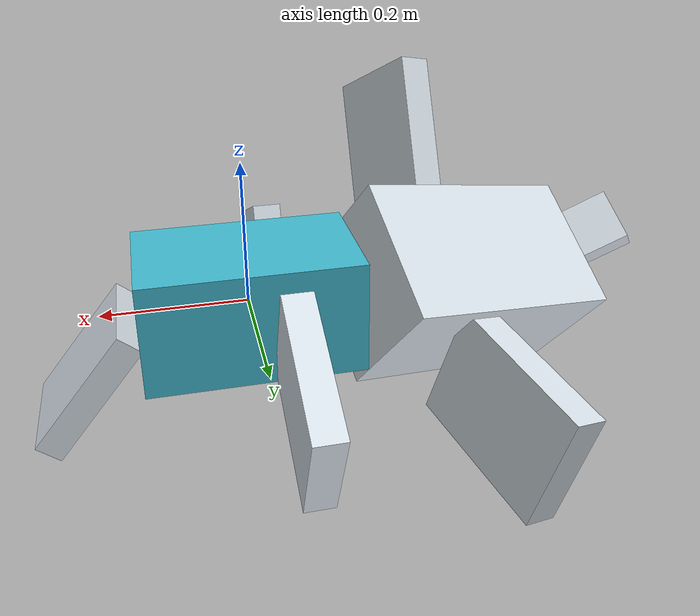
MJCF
<mujoco model="criatura">
  <compiler angle="degree" autolimits="true"/>
  <option timestep="0.002083" gravity="0 0 0" integrator="implicitfast"/>
  <default>
    <geom type="box" density="300.0" rgba="0.85 0.89 0.92 1"/>
    <joint type="hinge"/>
    <motor ctrlrange="-1 1"/>
  </default>
  <worldbody>
    <body name="p0_n0" pos="0.00000 0.00000 0.00000" quat="1.000000 0.000000 0.000000 0.000000">
      <freejoint name="raiz"/>
      <geom name="g_p0_n0" size="0.15000 0.09000 0.08000" rgba="0.25 0.72 0.8 1"/>
      <body name="p1_n1" pos="0.22404 -0.02089 -0.09233" quat="0.901553 0.000000 0.432669 0.000000">
        <joint name="p1_n1_j0" axis="1.0000 0.0000 0.0000" pos="-0.11835 0 0" range="-76.66 76.66" damping="0.3200"/>
        <joint name="p1_n1_j1" axis="0.0000 0.0000 1.0000" pos="-0.11835 0 0" range="-76.66 76.66" damping="0.3200"/>
        <geom name="g_p1_n1" size="0.09835 0.08000 0.02000"/>
      </body>
      <body name="p2_n1" pos="-0.04500 0.20167 -0.03988" quat="0.596368 0.379928 0.596368 0.379928">
        <joint name="p2_n1_j0" axis="1.0000 0.0000 0.0000" pos="-0.12321 0 0" range="-76.66 76.66" damping="0.3524"/>
        <joint name="p2_n1_j1" axis="0.0000 0.0000 1.0000" pos="-0.12321 0 0" range="-76.66 76.66" damping="0.3524"/>
        <geom name="g_p2_n1" size="0.10321 0.08396 0.02099"/>
      </body>
      <body name="p3_n1" pos="-0.05031 -0.19726 -0.03402" quat="0.596368 -0.379928 0.596368 -0.379928">
        <joint name="p3_n1_j0" axis="1.0000 0.0000 0.0000" pos="-0.11835 0 0" range="-76.66 76.66" damping="0.3200"/>
        <joint name="p3_n1_j1" axis="0.0000 0.0000 1.0000" pos="-0.11835 0 0" range="-76.66 76.66" damping="0.3200"/>
        <geom name="g_p3_n1" size="0.09835 0.08000 0.02000"/>
      </body>
      <body name="p4_n2" pos="-0.33681 -0.07641 -0.04448" quat="0.146196 -0.120462 0.937788 -0.290981">
        <geom name="g_p4_n2" size="0.18126 0.10875 0.09667"/>
        <body name="p5_n3" pos="0.23119 -0.02525 -0.07656" quat="0.901553 0.000000 0.432669 0.000000">
          <joint name="p5_n3_j0" axis="1.0000 0.0000 0.0000" pos="-0.07983 0 0" range="-76.66 76.66" damping="0.1721"/>
          <joint name="p5_n3_j1" axis="0.0000 0.0000 1.0000" pos="-0.07983 0 0" range="-76.66 76.66" damping="0.1721"/>
          <geom name="g_p5_n3" size="0.05983 0.04302 0.02000"/>
        </body>
        <body name="p6_n3" pos="-0.05438 0.23715 -0.04054" quat="0.596368 0.379928 0.596368 0.379928">
          <joint name="p6_n3_j0" axis="1.0000 0.0000 0.0000" pos="-0.14167 0 0" range="-76.66 76.66" damping="0.4438"/>
          <joint name="p6_n3_j1" axis="0.0000 0.0000 1.0000" pos="-0.14167 0 0" range="-76.66 76.66" damping="0.4438"/>
          <geom name="g_p6_n3" size="0.12167 0.08748 0.02536"/>
        </body>
        <body name="p7_n3" pos="-0.05438 -0.23195 -0.03812" quat="0.596368 -0.379928 0.596368 -0.379928">
          <joint name="p7_n3_j0" axis="1.0000 0.0000 0.0000" pos="-0.13594 0 0" range="-76.66 76.66" damping="0.4029"/>
          <joint name="p7_n3_j1" axis="0.0000 0.0000 1.0000" pos="-0.13594 0 0" range="-76.66 76.66" damping="0.4029"/>
          <geom name="g_p7_n3" size="0.11594 0.08336 0.02417"/>
        </body>
      </body>
    </body>
  </worldbody>
  <actuator>
    <motor name="m_p1_n1_j0" joint="p1_n1_j0" gear="-6.4000"/>
    <motor name="m_p1_n1_j1" joint="p1_n1_j1" gear="-6.4000"/>
    <motor name="m_p2_n1_j0" joint="p2_n1_j0" gear="7.0488"/>
    <motor name="m_p2_n1_j1" joint="p2_n1_j1" gear="7.0488"/>
    <motor name="m_p3_n1_j0" joint="p3_n1_j0" gear="-6.4000"/>
    <motor name="m_p3_n1_j1" joint="p3_n1_j1" gear="-6.4000"/>
    <motor name="m_p5_n3_j0" joint="p5_n3_j0" gear="-3.4413"/>
    <motor name="m_p5_n3_j1" joint="p5_n3_j1" gear="-3.4413"/>
    <motor name="m_p6_n3_j0" joint="p6_n3_j0" gear="8.8754"/>
    <motor name="m_p6_n3_j1" joint="p6_n3_j1" gear="8.8754"/>
    <motor name="m_p7_n3_j0" joint="p7_n3_j0" gear="-8.0585"/>
    <motor name="m_p7_n3_j1" joint="p7_n3_j1" gear="-8.0585"/>
  </actuator>
</mujoco>
